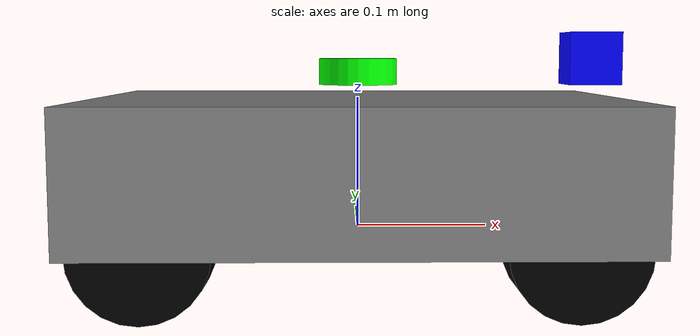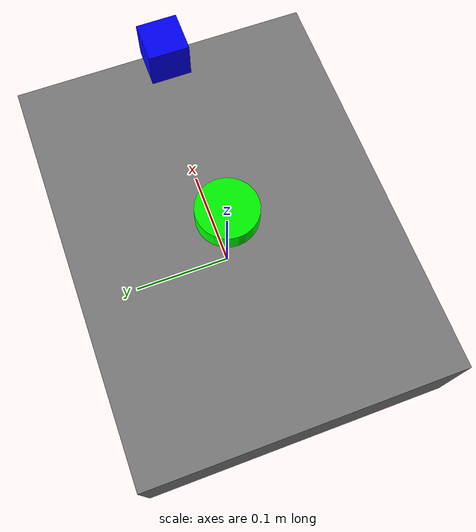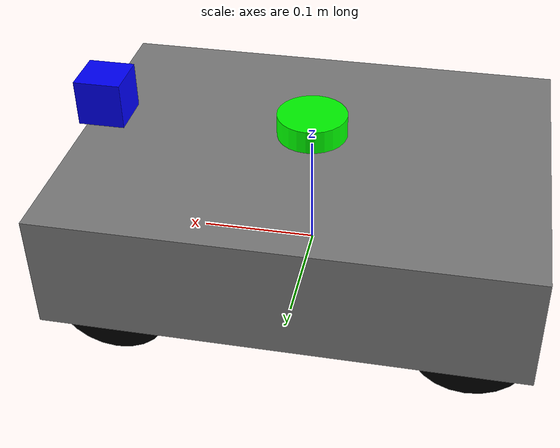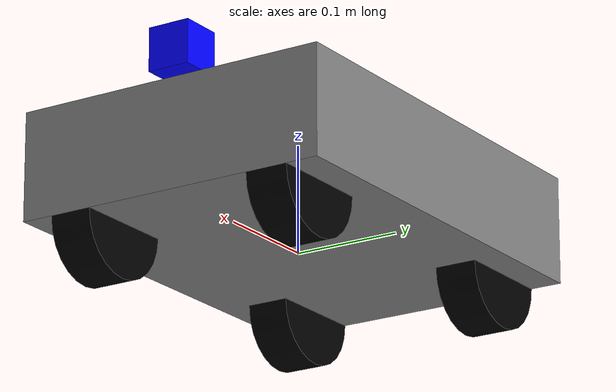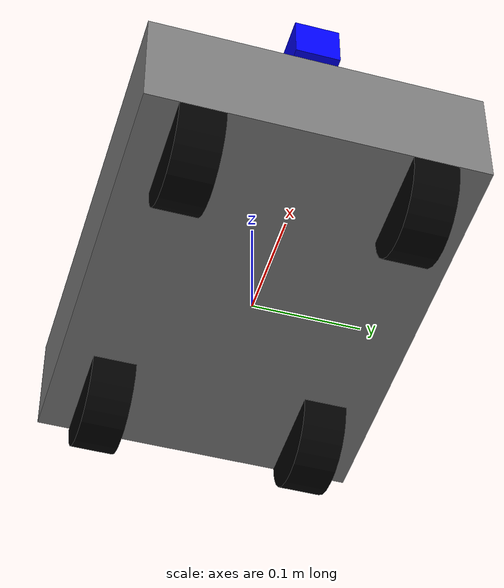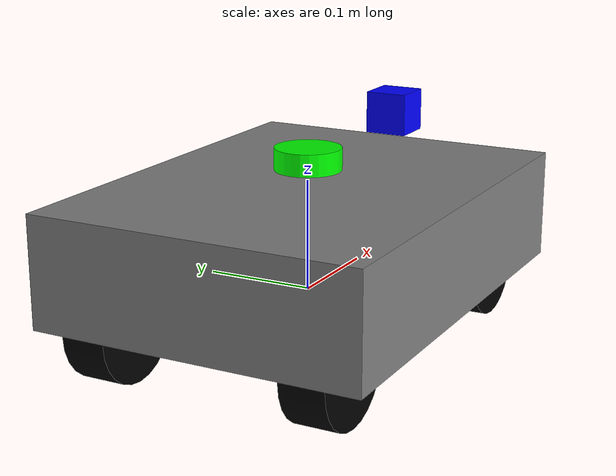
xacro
<?xml version="1.0"?>
<?xacro?>
<robot xmlns:xacro="http://ros.org/wiki/xacro" name="four_wheel_bot">

  <!-- Parameters -->
  <xacro:property name="wheel_radius" value="0.05"/>
  <xacro:property name="wheel_width" value="0.04"/>
  <xacro:property name="chassis_length" value="0.4"/>
  <xacro:property name="chassis_width" value="0.3"/>
  <xacro:property name="chassis_height" value="0.1"/>
  <xacro:property name="wheel_x_offset" value="${chassis_length / 2 - wheel_radius}"/>
  <xacro:property name="wheel_y_offset" value="${chassis_width / 2 - wheel_radius}"/>

  <!-- Base Link -->
  <link name="base_link">
    <visual>
      <geometry>
        <box size="${chassis_length} ${chassis_width} ${chassis_height}"/>
      </geometry>
      <origin xyz="0 0 ${chassis_height / 2}" rpy="0 0 0"/>
      <material name="gray"><color rgba="0.5 0.5 0.5 1"/></material>
    </visual>
    <collision>
      <geometry>
        <box size="${chassis_length} ${chassis_width} ${chassis_height}"/>
      </geometry>
      <origin xyz="0 0 ${chassis_height / 2}" rpy="0 0 0"/>
    </collision>
    <inertial>
      <mass value="20"/>
      <origin xyz="0 0 0.02" rpy="0 0 0"/>
      <inertia ixx="0.3" ixy="0" ixz="0" iyy="0.3" iyz="0" izz="0.3"/>
    </inertial>
  </link>

  <gazebo reference="base_link">
    <material>Gazebo/Red</material>
  </gazebo>

  <!-- Wheel Macro -->
  <xacro:macro name="wheel" params="name x y">
    <link name="${name}_link">
      <visual>
        <geometry>
          <cylinder radius="${wheel_radius}" length="${wheel_width}"/>
        </geometry>
        <origin xyz="0 0 0" rpy="1.5708 0 0"/>
        <material name="black"><color rgba="0 0 0 1"/></material>
      </visual>
      <collision>
        <geometry>
          <cylinder radius="${wheel_radius}" length="${wheel_width}"/>
        </geometry>
        <origin xyz="0 0 0" rpy="1.5708 0 0"/>
      </collision>
      <inertial>
        <mass value="1"/>
        <origin xyz="0 0 0" rpy="0 0 0"/>
        <inertia ixx="0.01" ixy="0" ixz="0" iyy="0.01" iyz="0" izz="0.01"/>
      </inertial>
    </link>
    <joint name="${name}_joint" type="continuous">
      <parent link="base_link"/>
      <child link="${name}_link"/>
      <origin xyz="${x} ${y} 0" rpy="0 0 0"/>
      <axis xyz="0 1 0"/>
    </joint>
  </xacro:macro>

  <!-- Wheels -->
  <xacro:wheel name="front_left_wheel" x="${wheel_x_offset}" y="${wheel_y_offset}"/>
  <xacro:wheel name="front_right_wheel" x="${wheel_x_offset}" y="${-wheel_y_offset}"/>
  <xacro:wheel name="rear_left_wheel" x="${-wheel_x_offset}" y="${wheel_y_offset}"/>
  <xacro:wheel name="rear_right_wheel" x="${-wheel_x_offset}" y="${-wheel_y_offset}"/>

  <!-- Gazebo materials for wheels -->
  <gazebo reference="front_left_wheel_link">
    <material>Gazebo/Black</material>
  </gazebo>
  <gazebo reference="front_right_wheel_link">
    <material>Gazebo/Black</material>
  </gazebo>
  <gazebo reference="rear_left_wheel_link">
    <material>Gazebo/Black</material>
  </gazebo>
  <gazebo reference="rear_right_wheel_link">
    <material>Gazebo/Black</material>
  </gazebo>

  <!-- LIDAR -->
  <link name="lidar_link">
    <visual>
      <geometry><cylinder radius="0.03" length="0.02"/></geometry>
      <origin xyz="0 0 0" rpy="0 0 0"/>
      <material name="green"><color rgba="0 1 0 1"/></material>
    </visual>
    <collision>
      <geometry><cylinder radius="0.03" length="0.02"/></geometry>
      <origin xyz="0 0 0.12" rpy="0 0 0"/>
    </collision>
  </link>
  <joint name="lidar_joint" type="fixed">
    <parent link="base_link"/>
    <child link="lidar_link"/>
    <origin xyz="0 0 0.12" rpy="0 0 0"/>
  </joint>

  <gazebo reference="lidar_link">
    <material>Gazebo/Green</material>
    <sensor type="ray" name="lidar_sensor">
      <update_rate>30</update_rate>
      <visualize>true</visualize>
      <ray>
        <scan>
          <horizontal>
            <samples>720</samples>
            <resolution>1</resolution>
            <min_angle>-1.5708</min_angle>
            <max_angle>1.5708</max_angle>
          </horizontal>
        </scan>
        <range><min>0.12</min><max>3.5</max></range>
      </ray>
      <plugin name="gazebo_ros_laser" filename="libgazebo_ros_ray_sensor.so">
        <ros><namespace>/four_wheel_bot</namespace></ros>
        <topicName>scan</topicName>
        <frameName>lidar_link</frameName>
        <output_type>sensor_msgs/LaserScan</output_type>
      </plugin>
    </sensor>
  </gazebo>

  <!-- Camera -->
  <link name="camera_link">
    <visual>
      <geometry><box size="0.04 0.04 0.04"/></geometry>
      <origin xyz="0 0 0" rpy="0 0 0"/>
      <material name="blue"><color rgba="0 0 1 1"/></material>
    </visual>
    <collision>
      <geometry><box size="0.04 0.04 0.04"/></geometry>
      <origin xyz="0 0 0.2" rpy="0 0 0"/>
    </collision>
  </link>
  <joint name="camera_joint" type="fixed">
    <parent link="base_link"/>
    <child link="camera_link"/>
    <origin xyz="${chassis_length / 2 - 0.02} 0 ${chassis_height + 0.03}" rpy="0 0 0"/>
  </joint>

  <gazebo reference="camera_link">
    <material>Gazebo/Blue</material>
    <sensor type="camera" name="camera_sensor">
      <update_rate>30</update_rate>
      <visualize>true</visualize>
      <camera>
        <horizontal_fov>1.047</horizontal_fov>
        <image>
          <width>640</width>
          <height>480</height>
          <format>R8G8B8</format>
        </image>
        <clip><near>0.1</near><far>100</far></clip>
      </camera>
      <plugin name="gazebo_ros_camera_controller" filename="libgazebo_ros_camera.so">
        <ros><namespace>/four_wheel_bot</namespace></ros>
        <cameraName>camera</cameraName>
        <imageTopicName>image_raw</imageTopicName>
        <cameraInfoTopicName>camera_info</cameraInfoTopicName>
        <frameName>camera_link</frameName>
      </plugin>
    </sensor>
  </gazebo>

  <!-- Differential Drive Plugin with speed limit -->
  <gazebo>
    <plugin name="differential_drive_controller" filename="libgazebo_ros_diff_drive.so">
      <ros><namespace>/four_wheel_bot</namespace></ros>
      <left_joint>rear_left_wheel_joint</left_joint>
      <right_joint>rear_right_wheel_joint</right_joint>
      <wheel_separation>${2 * wheel_y_offset}</wheel_separation>
      <wheel_radius>${wheel_radius}</wheel_radius>
      <wheel_diameter>${2 * wheel_radius}</wheel_diameter>
      <cmd_vel_topic>cmd_vel</cmd_vel_topic>
      <odometry_topic>odom</odometry_topic>
      <publish_odom>true</publish_odom>
      <max_velocity>0.5</max_velocity>
      <max_acceleration>1.0</max_acceleration>
    </plugin>
  </gazebo>

</robot>
